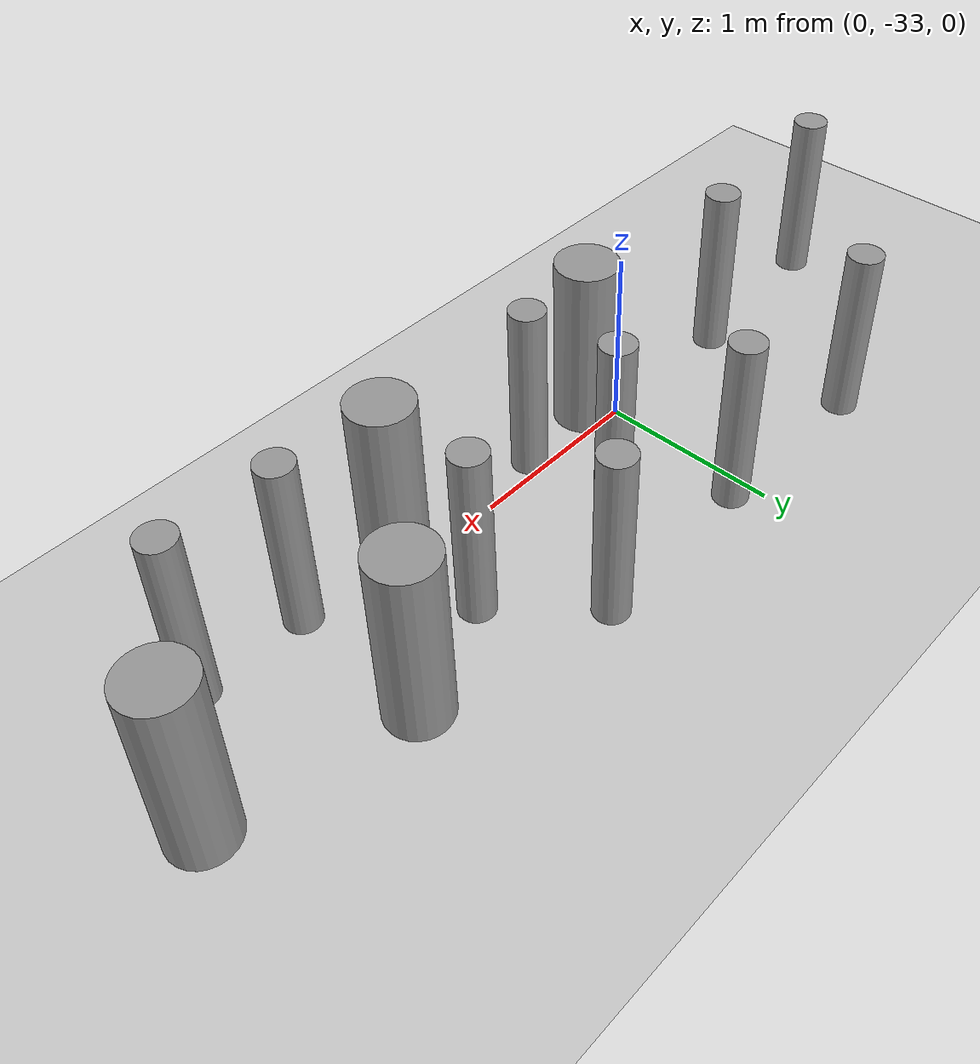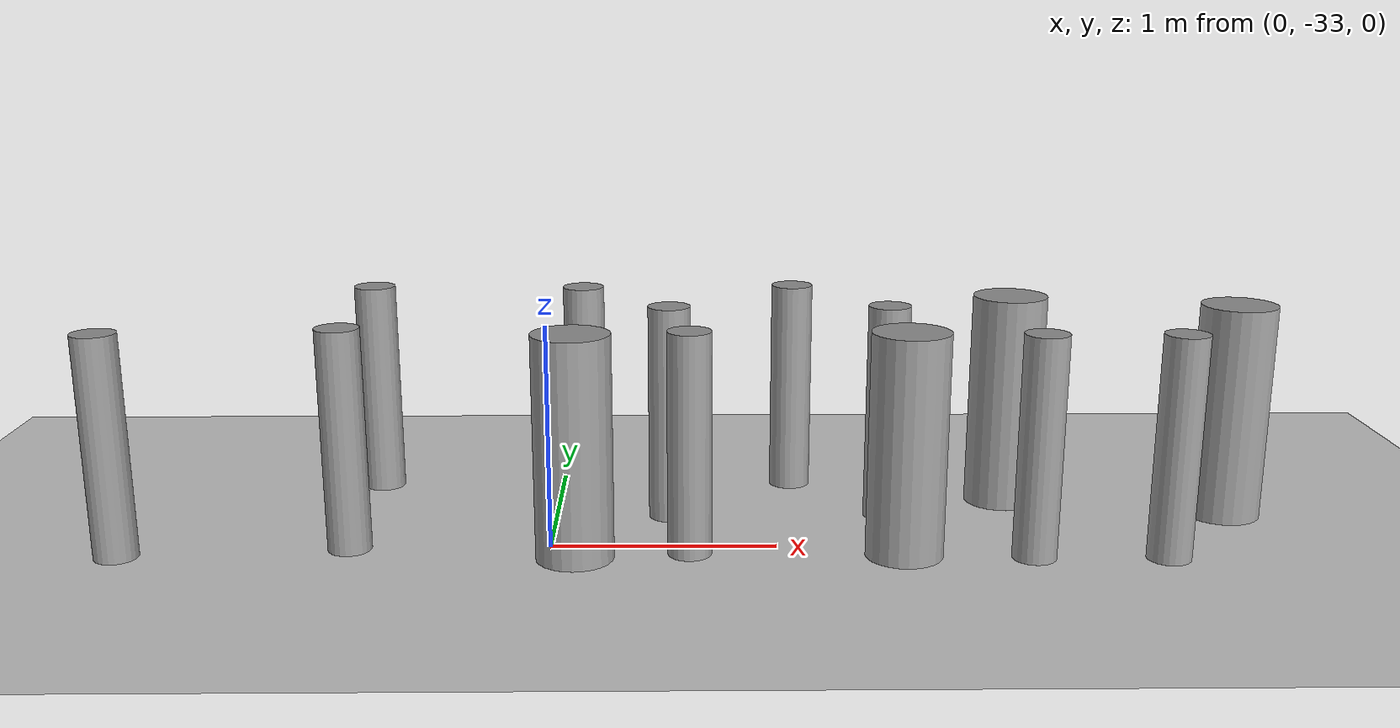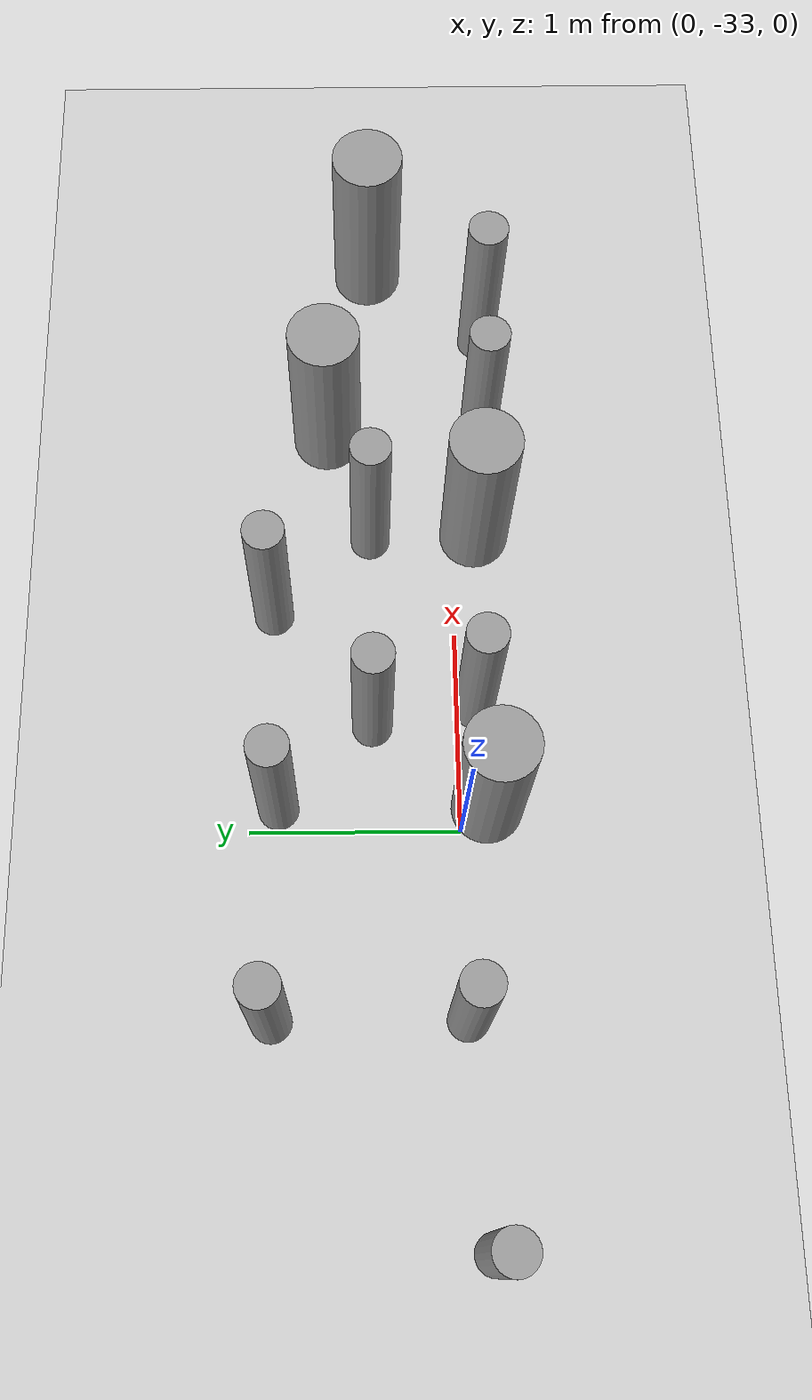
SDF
<sdf version="1.6">
 <world name="default">
  <model name="ground_plane">
   <static>1</static>
   <link name="link">
    <collision name="collision">
     <geometry><plane><normal>0 0 1</normal><size>100 100</size></plane></geometry>
     <surface><friction><ode><mu>100</mu><mu2>50</mu2></ode></friction></surface>
    </collision>
    <visual name="visual">
     <cast_shadows>0</cast_shadows>
     <geometry><plane><normal>0 0 1</normal><size>100 100</size></plane></geometry>
     <material>
      <script><uri>file://media/materials/scripts/gazebo.material</uri><name>Gazebo/Grey</name></script>
     </material>
    </visual>
   </link>
  </model>
  <model name="cyl_wall_clone_clone_3_clone_4">
   <link name="link_0">
    <pose>-2.73893 -0.366465 0 0 -0 0</pose>
    <inertial>
     <mass>0.0374993</mass>
     <inertia>
      <ixx>0.00321281</ixx>
      <ixy>0</ixy>
      <ixz>0</ixz>
      <iyy>0.00321281</iyy>
      <iyz>0</iyz>
      <izz>0.000175774</izz>
     </inertia>
    </inertial>
    <visual name="visual">
     <geometry><cylinder><radius>0.0968661</radius><length>1</length></cylinder></geometry>
     <material>
      <lighting>1</lighting>
      <script><uri>file://media/materials/scripts/gazebo.material</uri><name>Gazebo/Grey</name></script>
      <ambient>0.3 0.3 0.3 1</ambient>
      <diffuse>0.7 0.7 0.7 1</diffuse>
      <specular>0.01 0.01 0.01 1</specular>
      <emissive>0 0 0 1</emissive>
     </material>
    </visual>
    <collision name="collision">
     <geometry><cylinder><radius>0.096866</radius><length>1</length></cylinder></geometry>
     <surface>
      <friction>
       <ode><mu>1</mu><mu2>1</mu2><fdir1>0 0 0</fdir1><slip1>0</slip1><slip2>0</slip2></ode>
       <torsional>
        <coefficient>1</coefficient>
        <patch_radius>0</patch_radius>
        <surface_radius>0</surface_radius>
        <use_patch_radius>1</use_patch_radius>
        <ode><slip>0</slip></ode>
       </torsional>
      </friction>
      <bounce><restitution_coefficient>0</restitution_coefficient><threshold>1e+06</threshold></bounce>
      <contact>
       <collide_without_contact>0</collide_without_contact>
       <collide_without_contact_bitmask>1</collide_without_contact_bitmask>
       <collide_bitmask>1</collide_bitmask>
       <ode>
        <soft_cfm>0</soft_cfm>
        <soft_erp>0.2</soft_erp>
        <kp>1e+13</kp>
        <kd>1</kd>
        <max_vel>0.01</max_vel>
        <min_depth>0</min_depth>
       </ode>
       <bullet>
        <split_impulse>1</split_impulse>
        <split_impulse_penetration_threshold>-0.01</split_impulse_penetration_threshold>
        <soft_cfm>0</soft_cfm>
        <soft_erp>0.2</soft_erp>
        <kp>1e+13</kp>
        <kd>1</kd>
       </bullet>
      </contact>
     </surface>
    </collision>
   </link>
   <link name="link_0_clone">
    <pose>-1.73893 0.61877 0 0 -0 0</pose>
    <inertial>
     <mass>0.0374993</mass>
     <inertia>
      <ixx>0.00321281</ixx>
      <ixy>0</ixy>
      <ixz>0</ixz>
      <iyy>0.00321281</iyy>
      <iyz>0</iyz>
      <izz>0.000175774</izz>
     </inertia>
    </inertial>
    <visual name="visual">
     <geometry><cylinder><radius>0.0968661</radius><length>1</length></cylinder></geometry>
     <material>
      <lighting>1</lighting>
      <script><uri>file://media/materials/scripts/gazebo.material</uri><name>Gazebo/Grey</name></script>
      <ambient>0.3 0.3 0.3 1</ambient>
      <diffuse>0.7 0.7 0.7 1</diffuse>
      <specular>0.01 0.01 0.01 1</specular>
      <emissive>0 0 0 1</emissive>
      <shader type="pixel"/>
     </material>
    </visual>
    <collision name="collision">
     <geometry><cylinder><radius>0.096866</radius><length>1</length></cylinder></geometry>
     <surface>
      <friction>
       <ode><mu>1</mu><mu2>1</mu2><fdir1>0 0 0</fdir1><slip1>0</slip1><slip2>0</slip2></ode>
       <torsional>
        <coefficient>1</coefficient>
        <patch_radius>0</patch_radius>
        <surface_radius>0</surface_radius>
        <use_patch_radius>1</use_patch_radius>
        <ode><slip>0</slip></ode>
       </torsional>
      </friction>
      <bounce><restitution_coefficient>0</restitution_coefficient><threshold>1e+06</threshold></bounce>
      <contact>
       <collide_without_contact>0</collide_without_contact>
       <collide_without_contact_bitmask>1</collide_without_contact_bitmask>
       <collide_bitmask>1</collide_bitmask>
       <ode>
        <soft_cfm>0</soft_cfm>
        <soft_erp>0.2</soft_erp>
        <kp>1e+13</kp>
        <kd>1</kd>
        <max_vel>0.01</max_vel>
        <min_depth>0</min_depth>
       </ode>
       <bullet>
        <split_impulse>1</split_impulse>
        <split_impulse_penetration_threshold>-0.01</split_impulse_penetration_threshold>
        <soft_cfm>0</soft_cfm>
        <soft_erp>0.2</soft_erp>
        <kp>1e+13</kp>
        <kd>1</kd>
       </bullet>
      </contact>
     </surface>
    </collision>
   </link>
   <link name="link_0_clone_clone">
    <pose>-0.327073 0.143919 0 0 -0 0</pose>
    <inertial>
     <mass>0.0374993</mass>
     <inertia>
      <ixx>0.00321281</ixx>
      <ixy>0</ixy>
      <ixz>0</ixz>
      <iyy>0.00321281</iyy>
      <iyz>0</iyz>
      <izz>0.000175774</izz>
     </inertia>
    </inertial>
    <visual name="visual">
     <geometry><cylinder><radius>0.0968661</radius><length>1</length></cylinder></geometry>
     <material>
      <lighting>1</lighting>
      <script><uri>file://media/materials/scripts/gazebo.material</uri><name>Gazebo/Grey</name></script>
      <ambient>0.3 0.3 0.3 1</ambient>
      <diffuse>0.7 0.7 0.7 1</diffuse>
      <specular>0.01 0.01 0.01 1</specular>
      <emissive>0 0 0 1</emissive>
      <shader type="pixel"/>
     </material>
    </visual>
    <collision name="collision">
     <geometry><cylinder><radius>0.096866</radius><length>1</length></cylinder></geometry>
     <surface>
      <friction>
       <ode><mu>1</mu><mu2>1</mu2><fdir1>0 0 0</fdir1><slip1>0</slip1><slip2>0</slip2></ode>
       <torsional>
        <coefficient>1</coefficient>
        <patch_radius>0</patch_radius>
        <surface_radius>0</surface_radius>
        <use_patch_radius>1</use_patch_radius>
        <ode><slip>0</slip></ode>
       </torsional>
      </friction>
      <bounce><restitution_coefficient>0</restitution_coefficient><threshold>1e+06</threshold></bounce>
      <contact>
       <collide_without_contact>0</collide_without_contact>
       <collide_without_contact_bitmask>1</collide_without_contact_bitmask>
       <collide_bitmask>1</collide_bitmask>
       <ode>
        <soft_cfm>0</soft_cfm>
        <soft_erp>0.2</soft_erp>
        <kp>1e+13</kp>
        <kd>1</kd>
        <max_vel>0.01</max_vel>
        <min_depth>0</min_depth>
       </ode>
       <bullet>
        <split_impulse>1</split_impulse>
        <split_impulse_penetration_threshold>-0.01</split_impulse_penetration_threshold>
        <soft_cfm>0</soft_cfm>
        <soft_erp>0.2</soft_erp>
        <kp>1e+13</kp>
        <kd>1</kd>
       </bullet>
      </contact>
     </surface>
    </collision>
   </link>
   <link name="link_0_clone_clone_0">
    <pose>1.26107 -0.419359 0 0 -0 0</pose>
    <inertial>
     <mass>0.0374993</mass>
     <inertia>
      <ixx>0.00321281</ixx>
      <ixy>0</ixy>
      <ixz>0</ixz>
      <iyy>0.00321281</iyy>
      <iyz>0</iyz>
      <izz>0.000175774</izz>
     </inertia>
    </inertial>
    <visual name="visual">
     <geometry><cylinder><radius>0.0968661</radius><length>1</length></cylinder></geometry>
     <material>
      <lighting>1</lighting>
      <script><uri>file://media/materials/scripts/gazebo.material</uri><name>Gazebo/Grey</name></script>
      <ambient>0.3 0.3 0.3 1</ambient>
      <diffuse>0.7 0.7 0.7 1</diffuse>
      <specular>0.01 0.01 0.01 1</specular>
      <emissive>0 0 0 1</emissive>
      <shader type="pixel"/>
     </material>
    </visual>
    <collision name="collision">
     <geometry><cylinder><radius>0.096866</radius><length>1</length></cylinder></geometry>
     <surface>
      <friction>
       <ode><mu>1</mu><mu2>1</mu2><fdir1>0 0 0</fdir1><slip1>0</slip1><slip2>0</slip2></ode>
       <torsional>
        <coefficient>1</coefficient>
        <patch_radius>0</patch_radius>
        <surface_radius>0</surface_radius>
        <use_patch_radius>1</use_patch_radius>
        <ode><slip>0</slip></ode>
       </torsional>
      </friction>
      <bounce><restitution_coefficient>0</restitution_coefficient><threshold>1e+06</threshold></bounce>
      <contact>
       <collide_without_contact>0</collide_without_contact>
       <collide_without_contact_bitmask>1</collide_without_contact_bitmask>
       <collide_bitmask>1</collide_bitmask>
       <ode>
        <soft_cfm>0</soft_cfm>
        <soft_erp>0.2</soft_erp>
        <kp>1e+13</kp>
        <kd>1</kd>
        <max_vel>0.01</max_vel>
        <min_depth>0</min_depth>
       </ode>
       <bullet>
        <split_impulse>1</split_impulse>
        <split_impulse_penetration_threshold>-0.01</split_impulse_penetration_threshold>
        <soft_cfm>0</soft_cfm>
        <soft_erp>0.2</soft_erp>
        <kp>1e+13</kp>
        <kd>1</kd>
       </bullet>
      </contact>
     </surface>
    </collision>
   </link>
   <link name="link_0_clone_clone_1">
    <pose>-1.73893 -0.277168 0 0 -0 0</pose>
    <inertial>
     <mass>0.0374993</mass>
     <inertia>
      <ixx>0.00321281</ixx>
      <ixy>0</ixy>
      <ixz>0</ixz>
      <iyy>0.00321281</iyy>
      <iyz>0</iyz>
      <izz>0.000175774</izz>
     </inertia>
    </inertial>
    <visual name="visual">
     <geometry><cylinder><radius>0.0968661</radius><length>1</length></cylinder></geometry>
     <material>
      <lighting>1</lighting>
      <script><uri>file://media/materials/scripts/gazebo.material</uri><name>Gazebo/Grey</name></script>
      <ambient>0.3 0.3 0.3 1</ambient>
      <diffuse>0.7 0.7 0.7 1</diffuse>
      <specular>0.01 0.01 0.01 1</specular>
      <emissive>0 0 0 1</emissive>
      <shader type="pixel"/>
     </material>
    </visual>
    <collision name="collision">
     <geometry><cylinder><radius>0.096866</radius><length>1</length></cylinder></geometry>
     <surface>
      <friction>
       <ode><mu>1</mu><mu2>1</mu2><fdir1>0 0 0</fdir1><slip1>0</slip1><slip2>0</slip2></ode>
       <torsional>
        <coefficient>1</coefficient>
        <patch_radius>0</patch_radius>
        <surface_radius>0</surface_radius>
        <use_patch_radius>1</use_patch_radius>
        <ode><slip>0</slip></ode>
       </torsional>
      </friction>
      <bounce><restitution_coefficient>0</restitution_coefficient><threshold>1e+06</threshold></bounce>
      <contact>
       <collide_without_contact>0</collide_without_contact>
       <collide_without_contact_bitmask>1</collide_without_contact_bitmask>
       <collide_bitmask>1</collide_bitmask>
       <ode>
        <soft_cfm>0</soft_cfm>
        <soft_erp>0.2</soft_erp>
        <kp>1e+13</kp>
        <kd>1</kd>
        <max_vel>0.01</max_vel>
        <min_depth>0</min_depth>
       </ode>
       <bullet>
        <split_impulse>1</split_impulse>
        <split_impulse_penetration_threshold>-0.01</split_impulse_penetration_threshold>
        <soft_cfm>0</soft_cfm>
        <soft_erp>0.2</soft_erp>
        <kp>1e+13</kp>
        <kd>1</kd>
       </bullet>
      </contact>
     </surface>
    </collision>
   </link>
   <link name="link_0_clone_clone_2">
    <pose>-0.738934 0.593961 0 0 -0 0</pose>
    <inertial>
     <mass>0.0374993</mass>
     <inertia>
      <ixx>0.00321281</ixx>
      <ixy>0</ixy>
      <ixz>0</ixz>
      <iyy>0.00321281</iyy>
      <iyz>0</iyz>
      <izz>0.000175774</izz>
     </inertia>
    </inertial>
    <visual name="visual">
     <geometry><cylinder><radius>0.0968661</radius><length>1</length></cylinder></geometry>
     <material>
      <lighting>1</lighting>
      <script><uri>file://media/materials/scripts/gazebo.material</uri><name>Gazebo/Grey</name></script>
      <ambient>0.3 0.3 0.3 1</ambient>
      <diffuse>0.7 0.7 0.7 1</diffuse>
      <specular>0.01 0.01 0.01 1</specular>
      <emissive>0 0 0 1</emissive>
      <shader type="pixel"/>
     </material>
    </visual>
    <collision name="collision">
     <geometry><cylinder><radius>0.096866</radius><length>1</length></cylinder></geometry>
     <surface>
      <friction>
       <ode><mu>1</mu><mu2>1</mu2><fdir1>0 0 0</fdir1><slip1>0</slip1><slip2>0</slip2></ode>
       <torsional>
        <coefficient>1</coefficient>
        <patch_radius>0</patch_radius>
        <surface_radius>0</surface_radius>
        <use_patch_radius>1</use_patch_radius>
        <ode><slip>0</slip></ode>
       </torsional>
      </friction>
      <bounce><restitution_coefficient>0</restitution_coefficient><threshold>1e+06</threshold></bounce>
      <contact>
       <collide_without_contact>0</collide_without_contact>
       <collide_without_contact_bitmask>1</collide_without_contact_bitmask>
       <collide_bitmask>1</collide_bitmask>
       <ode>
        <soft_cfm>0</soft_cfm>
        <soft_erp>0.2</soft_erp>
        <kp>1e+13</kp>
        <kd>1</kd>
        <max_vel>0.01</max_vel>
        <min_depth>0</min_depth>
       </ode>
       <bullet>
        <split_impulse>1</split_impulse>
        <split_impulse_penetration_threshold>-0.01</split_impulse_penetration_threshold>
        <soft_cfm>0</soft_cfm>
        <soft_erp>0.2</soft_erp>
        <kp>1e+13</kp>
        <kd>1</kd>
       </bullet>
      </contact>
     </surface>
    </collision>
   </link>
   <link name="link_0_clone_clone_3">
    <pose>0.261066 0.624849 0 0 -0 0</pose>
    <inertial>
     <mass>0.0374993</mass>
     <inertia>
      <ixx>0.00321281</ixx>
      <ixy>0</ixy>
      <ixz>0</ixz>
      <iyy>0.00321281</iyy>
      <iyz>0</iyz>
      <izz>0.000175774</izz>
     </inertia>
    </inertial>
    <visual name="visual">
     <geometry><cylinder><radius>0.0968661</radius><length>1</length></cylinder></geometry>
     <material>
      <lighting>1</lighting>
      <script><uri>file://media/materials/scripts/gazebo.material</uri><name>Gazebo/Grey</name></script>
      <ambient>0.3 0.3 0.3 1</ambient>
      <diffuse>0.7 0.7 0.7 1</diffuse>
      <specular>0.01 0.01 0.01 1</specular>
      <emissive>0 0 0 1</emissive>
      <shader type="pixel"/>
     </material>
    </visual>
    <collision name="collision">
     <geometry><cylinder><radius>0.096866</radius><length>1</length></cylinder></geometry>
     <surface>
      <friction>
       <ode><mu>1</mu><mu2>1</mu2><fdir1>0 0 0</fdir1><slip1>0</slip1><slip2>0</slip2></ode>
       <torsional>
        <coefficient>1</coefficient>
        <patch_radius>0</patch_radius>
        <surface_radius>0</surface_radius>
        <use_patch_radius>1</use_patch_radius>
        <ode><slip>0</slip></ode>
       </torsional>
      </friction>
      <bounce><restitution_coefficient>0</restitution_coefficient><threshold>1e+06</threshold></bounce>
      <contact>
       <collide_without_contact>0</collide_without_contact>
       <collide_without_contact_bitmask>1</collide_without_contact_bitmask>
       <collide_bitmask>1</collide_bitmask>
       <ode>
        <soft_cfm>0</soft_cfm>
        <soft_erp>0.2</soft_erp>
        <kp>1e+13</kp>
        <kd>1</kd>
        <max_vel>0.01</max_vel>
        <min_depth>0</min_depth>
       </ode>
       <bullet>
        <split_impulse>1</split_impulse>
        <split_impulse_penetration_threshold>-0.01</split_impulse_penetration_threshold>
        <soft_cfm>0</soft_cfm>
        <soft_erp>0.2</soft_erp>
        <kp>1e+13</kp>
        <kd>1</kd>
       </bullet>
      </contact>
     </surface>
    </collision>
   </link>
   <link name="link_0_clone_clone_4">
    <pose>-0.239049 -0.353105 0 0 -0 0</pose>
    <inertial>
     <mass>0.0374993</mass>
     <inertia>
      <ixx>0.00321281</ixx>
      <ixy>0</ixy>
      <ixz>0</ixz>
      <iyy>0.00321281</iyy>
      <iyz>0</iyz>
      <izz>0.000175774</izz>
     </inertia>
    </inertial>
    <visual name="visual">
     <geometry><cylinder><radius>0.0968661</radius><length>1</length></cylinder></geometry>
     <material>
      <lighting>1</lighting>
      <script><uri>file://media/materials/scripts/gazebo.material</uri><name>Gazebo/Grey</name></script>
      <ambient>0.3 0.3 0.3 1</ambient>
      <diffuse>0.7 0.7 0.7 1</diffuse>
      <specular>0.01 0.01 0.01 1</specular>
      <emissive>0 0 0 1</emissive>
      <shader type="pixel"/>
     </material>
    </visual>
    <collision name="collision">
     <geometry><cylinder><radius>0.096866</radius><length>1</length></cylinder></geometry>
     <surface>
      <friction>
       <ode><mu>1</mu><mu2>1</mu2><fdir1>0 0 0</fdir1><slip1>0</slip1><slip2>0</slip2></ode>
       <torsional>
        <coefficient>1</coefficient>
        <patch_radius>0</patch_radius>
        <surface_radius>0</surface_radius>
        <use_patch_radius>1</use_patch_radius>
        <ode><slip>0</slip></ode>
       </torsional>
      </friction>
      <bounce><restitution_coefficient>0</restitution_coefficient><threshold>1e+06</threshold></bounce>
      <contact>
       <collide_without_contact>0</collide_without_contact>
       <collide_without_contact_bitmask>1</collide_without_contact_bitmask>
       <collide_bitmask>1</collide_bitmask>
       <ode>
        <soft_cfm>0</soft_cfm>
        <soft_erp>0.2</soft_erp>
        <kp>1e+13</kp>
        <kd>1</kd>
        <max_vel>0.01</max_vel>
        <min_depth>0</min_depth>
       </ode>
       <bullet>
        <split_impulse>1</split_impulse>
        <split_impulse_penetration_threshold>-0.01</split_impulse_penetration_threshold>
        <soft_cfm>0</soft_cfm>
        <soft_erp>0.2</soft_erp>
        <kp>1e+13</kp>
        <kd>1</kd>
       </bullet>
      </contact>
     </surface>
    </collision>
   </link>
   <link name="link_0_clone_clone_5">
    <pose>0.672792 0.143919 0 0 -0 0</pose>
    <inertial>
     <mass>0.0374993</mass>
     <inertia>
      <ixx>0.00321281</ixx>
      <ixy>0</ixy>
      <ixz>0</ixz>
      <iyy>0.00321281</iyy>
      <iyz>0</iyz>
      <izz>0.000175774</izz>
     </inertia>
    </inertial>
    <visual name="visual">
     <geometry><cylinder><radius>0.0968661</radius><length>1</length></cylinder></geometry>
     <material>
      <lighting>1</lighting>
      <script><uri>file://media/materials/scripts/gazebo.material</uri><name>Gazebo/Grey</name></script>
      <ambient>0.3 0.3 0.3 1</ambient>
      <diffuse>0.7 0.7 0.7 1</diffuse>
      <specular>0.01 0.01 0.01 1</specular>
      <emissive>0 0 0 1</emissive>
      <shader type="pixel"/>
     </material>
    </visual>
    <collision name="collision">
     <geometry><cylinder><radius>0.096866</radius><length>1</length></cylinder></geometry>
     <surface>
      <friction>
       <ode><mu>1</mu><mu2>1</mu2><fdir1>0 0 0</fdir1><slip1>0</slip1><slip2>0</slip2></ode>
       <torsional>
        <coefficient>1</coefficient>
        <patch_radius>0</patch_radius>
        <surface_radius>0</surface_radius>
        <use_patch_radius>1</use_patch_radius>
        <ode><slip>0</slip></ode>
       </torsional>
      </friction>
      <bounce><restitution_coefficient>0</restitution_coefficient><threshold>1e+06</threshold></bounce>
      <contact>
       <collide_without_contact>0</collide_without_contact>
       <collide_without_contact_bitmask>1</collide_without_contact_bitmask>
       <collide_bitmask>1</collide_bitmask>
       <ode>
        <soft_cfm>0</soft_cfm>
        <soft_erp>0.2</soft_erp>
        <kp>1e+13</kp>
        <kd>1</kd>
        <max_vel>0.01</max_vel>
        <min_depth>0</min_depth>
       </ode>
       <bullet>
        <split_impulse>1</split_impulse>
        <split_impulse_penetration_threshold>-0.01</split_impulse_penetration_threshold>
        <soft_cfm>0</soft_cfm>
        <soft_erp>0.2</soft_erp>
        <kp>1e+13</kp>
        <kd>1</kd>
       </bullet>
      </contact>
     </surface>
    </collision>
   </link>
   <link name="link_0_clone_clone_6">
    <pose>1.84596 -0.433423 0 0 -0 0</pose>
    <inertial>
     <mass>0.0374993</mass>
     <inertia>
      <ixx>0.00321281</ixx>
      <ixy>0</ixy>
      <ixz>0</ixz>
      <iyy>0.00321281</iyy>
      <iyz>0</iyz>
      <izz>0.000175774</izz>
     </inertia>
    </inertial>
    <visual name="visual">
     <geometry><cylinder><radius>0.0968661</radius><length>1</length></cylinder></geometry>
     <material>
      <lighting>1</lighting>
      <script><uri>file://media/materials/scripts/gazebo.material</uri><name>Gazebo/Grey</name></script>
      <ambient>0.3 0.3 0.3 1</ambient>
      <diffuse>0.7 0.7 0.7 1</diffuse>
      <specular>0.01 0.01 0.01 1</specular>
      <emissive>0 0 0 1</emissive>
      <shader type="pixel"/>
     </material>
    </visual>
    <collision name="collision">
     <geometry><cylinder><radius>0.096866</radius><length>1</length></cylinder></geometry>
     <surface>
      <friction>
       <ode><mu>1</mu><mu2>1</mu2><fdir1>0 0 0</fdir1><slip1>0</slip1><slip2>0</slip2></ode>
       <torsional>
        <coefficient>1</coefficient>
        <patch_radius>0</patch_radius>
        <surface_radius>0</surface_radius>
        <use_patch_radius>1</use_patch_radius>
        <ode><slip>0</slip></ode>
       </torsional>
      </friction>
      <bounce><restitution_coefficient>0</restitution_coefficient><threshold>1e+06</threshold></bounce>
      <contact>
       <collide_without_contact>0</collide_without_contact>
       <collide_without_contact_bitmask>1</collide_without_contact_bitmask>
       <collide_bitmask>1</collide_bitmask>
       <ode>
        <soft_cfm>0</soft_cfm>
        <soft_erp>0.2</soft_erp>
        <kp>1e+13</kp>
        <kd>1</kd>
        <max_vel>0.01</max_vel>
        <min_depth>0</min_depth>
       </ode>
       <bullet>
        <split_impulse>1</split_impulse>
        <split_impulse_penetration_threshold>-0.01</split_impulse_penetration_threshold>
        <soft_cfm>0</soft_cfm>
        <soft_erp>0.2</soft_erp>
        <kp>1e+13</kp>
        <kd>1</kd>
       </bullet>
      </contact>
     </surface>
    </collision>
   </link>
   <link name="link_1">
    <pose>-0.738934 -0.397931 0 0 -0 0</pose>
    <inertial>
     <mass>0.117398</mass>
     <inertia>
      <ixx>0.0106445</ixx>
      <ixy>0</ixy>
      <ixz>0</ixz>
      <iyy>0.0106445</iyy>
      <iyz>0</iyz>
      <izz>0.00172278</izz>
     </inertia>
    </inertial>
    <visual name="visual">
     <geometry><cylinder><radius>0.171317</radius><length>1</length></cylinder></geometry>
     <material>
      <lighting>1</lighting>
      <script><uri>file://media/materials/scripts/gazebo.material</uri><name>Gazebo/Grey</name></script>
      <ambient>0.3 0.3 0.3 1</ambient>
      <diffuse>0.7 0.7 0.7 1</diffuse>
      <specular>0.01 0.01 0.01 1</specular>
      <emissive>0 0 0 1</emissive>
     </material>
    </visual>
    <collision name="collision">
     <geometry><cylinder><radius>0.171317</radius><length>1</length></cylinder></geometry>
     <surface>
      <friction>
       <ode><mu>1</mu><mu2>1</mu2><fdir1>0 0 0</fdir1><slip1>0</slip1><slip2>0</slip2></ode>
       <torsional>
        <coefficient>1</coefficient>
        <patch_radius>0</patch_radius>
        <surface_radius>0</surface_radius>
        <use_patch_radius>1</use_patch_radius>
        <ode><slip>0</slip></ode>
       </torsional>
      </friction>
      <bounce><restitution_coefficient>0</restitution_coefficient><threshold>1e+06</threshold></bounce>
      <contact>
       <collide_without_contact>0</collide_without_contact>
       <collide_without_contact_bitmask>1</collide_without_contact_bitmask>
       <collide_bitmask>1</collide_bitmask>
       <ode>
        <soft_cfm>0</soft_cfm>
        <soft_erp>0.2</soft_erp>
        <kp>1e+13</kp>
        <kd>1</kd>
        <max_vel>0.01</max_vel>
        <min_depth>0</min_depth>
       </ode>
       <bullet>
        <split_impulse>1</split_impulse>
        <split_impulse_penetration_threshold>-0.01</split_impulse_penetration_threshold>
        <soft_cfm>0</soft_cfm>
        <soft_erp>0.2</soft_erp>
        <kp>1e+13</kp>
        <kd>1</kd>
       </bullet>
      </contact>
     </surface>
    </collision>
   </link>
   <link name="link_1_clone">
    <pose>0.697784 -0.380861 0 0 -0 0</pose>
    <inertial>
     <mass>0.117398</mass>
     <inertia>
      <ixx>0.0106445</ixx>
      <ixy>0</ixy>
      <ixz>0</ixz>
      <iyy>0.0106445</iyy>
      <iyz>0</iyz>
      <izz>0.00172278</izz>
     </inertia>
    </inertial>
    <visual name="visual">
     <geometry><cylinder><radius>0.171317</radius><length>1</length></cylinder></geometry>
     <material>
      <lighting>1</lighting>
      <script><uri>file://media/materials/scripts/gazebo.material</uri><name>Gazebo/Grey</name></script>
      <ambient>0.3 0.3 0.3 1</ambient>
      <diffuse>0.7 0.7 0.7 1</diffuse>
      <specular>0.01 0.01 0.01 1</specular>
      <emissive>0 0 0 1</emissive>
      <shader type="pixel"/>
     </material>
    </visual>
    <collision name="collision">
     <geometry><cylinder><radius>0.171317</radius><length>1</length></cylinder></geometry>
     <surface>
      <friction>
       <ode><mu>1</mu><mu2>1</mu2><fdir1>0 0 0</fdir1><slip1>0</slip1><slip2>0</slip2></ode>
       <torsional>
        <coefficient>1</coefficient>
        <patch_radius>0</patch_radius>
        <surface_radius>0</surface_radius>
        <use_patch_radius>1</use_patch_radius>
        <ode><slip>0</slip></ode>
       </torsional>
      </friction>
      <bounce><restitution_coefficient>0</restitution_coefficient><threshold>1e+06</threshold></bounce>
      <contact>
       <collide_without_contact>0</collide_without_contact>
       <collide_without_contact_bitmask>1</collide_without_contact_bitmask>
       <collide_bitmask>1</collide_bitmask>
       <ode>
        <soft_cfm>0</soft_cfm>
        <soft_erp>0.2</soft_erp>
        <kp>1e+13</kp>
        <kd>1</kd>
        <max_vel>0.01</max_vel>
        <min_depth>0</min_depth>
       </ode>
       <bullet>
        <split_impulse>1</split_impulse>
        <split_impulse_penetration_threshold>-0.01</split_impulse_penetration_threshold>
        <soft_cfm>0</soft_cfm>
        <soft_erp>0.2</soft_erp>
        <kp>1e+13</kp>
        <kd>1</kd>
       </bullet>
      </contact>
     </surface>
    </collision>
   </link>
   <link name="link_1_clone_0">
    <pose>1.26107 0.358974 0 0 -0 0</pose>
    <inertial>
     <mass>0.117398</mass>
     <inertia>
      <ixx>0.0106445</ixx>
      <ixy>0</ixy>
      <ixz>0</ixz>
      <iyy>0.0106445</iyy>
      <iyz>0</iyz>
      <izz>0.00172278</izz>
     </inertia>
    </inertial>
    <visual name="visual">
     <geometry><cylinder><radius>0.171317</radius><length>1</length></cylinder></geometry>
     <material>
      <lighting>1</lighting>
      <script><uri>file://media/materials/scripts/gazebo.material</uri><name>Gazebo/Grey</name></script>
      <ambient>0.3 0.3 0.3 1</ambient>
      <diffuse>0.7 0.7 0.7 1</diffuse>
      <specular>0.01 0.01 0.01 1</specular>
      <emissive>0 0 0 1</emissive>
      <shader type="pixel"/>
     </material>
    </visual>
    <collision name="collision">
     <geometry><cylinder><radius>0.171317</radius><length>1</length></cylinder></geometry>
     <surface>
      <friction>
       <ode><mu>1</mu><mu2>1</mu2><fdir1>0 0 0</fdir1><slip1>0</slip1><slip2>0</slip2></ode>
       <torsional>
        <coefficient>1</coefficient>
        <patch_radius>0</patch_radius>
        <surface_radius>0</surface_radius>
        <use_patch_radius>1</use_patch_radius>
        <ode><slip>0</slip></ode>
       </torsional>
      </friction>
      <bounce><restitution_coefficient>0</restitution_coefficient><threshold>1e+06</threshold></bounce>
      <contact>
       <collide_without_contact>0</collide_without_contact>
       <collide_without_contact_bitmask>1</collide_without_contact_bitmask>
       <collide_bitmask>1</collide_bitmask>
       <ode>
        <soft_cfm>0</soft_cfm>
        <soft_erp>0.2</soft_erp>
        <kp>1e+13</kp>
        <kd>1</kd>
        <max_vel>0.01</max_vel>
        <min_depth>0</min_depth>
       </ode>
       <bullet>
        <split_impulse>1</split_impulse>
        <split_impulse_penetration_threshold>-0.01</split_impulse_penetration_threshold>
        <soft_cfm>0</soft_cfm>
        <soft_erp>0.2</soft_erp>
        <kp>1e+13</kp>
        <kd>1</kd>
       </bullet>
      </contact>
     </surface>
    </collision>
   </link>
   <link name="link_1_clone_1">
    <pose>2.26107 0.143919 0 0 -0 0</pose>
    <inertial>
     <mass>0.117398</mass>
     <inertia>
      <ixx>0.0106445</ixx>
      <ixy>0</ixy>
      <ixz>0</ixz>
      <iyy>0.0106445</iyy>
      <iyz>0</iyz>
      <izz>0.00172278</izz>
     </inertia>
    </inertial>
    <visual name="visual">
     <geometry><cylinder><radius>0.171317</radius><length>1</length></cylinder></geometry>
     <material>
      <lighting>1</lighting>
      <script><uri>file://media/materials/scripts/gazebo.material</uri><name>Gazebo/Grey</name></script>
      <ambient>0.3 0.3 0.3 1</ambient>
      <diffuse>0.7 0.7 0.7 1</diffuse>
      <specular>0.01 0.01 0.01 1</specular>
      <emissive>0 0 0 1</emissive>
      <shader type="pixel"/>
     </material>
    </visual>
    <collision name="collision">
     <geometry><cylinder><radius>0.171317</radius><length>1</length></cylinder></geometry>
     <surface>
      <friction>
       <ode><mu>1</mu><mu2>1</mu2><fdir1>0 0 0</fdir1><slip1>0</slip1><slip2>0</slip2></ode>
       <torsional>
        <coefficient>1</coefficient>
        <patch_radius>0</patch_radius>
        <surface_radius>0</surface_radius>
        <use_patch_radius>1</use_patch_radius>
        <ode><slip>0</slip></ode>
       </torsional>
      </friction>
      <bounce><restitution_coefficient>0</restitution_coefficient><threshold>1e+06</threshold></bounce>
      <contact>
       <collide_without_contact>0</collide_without_contact>
       <collide_without_contact_bitmask>1</collide_without_contact_bitmask>
       <collide_bitmask>1</collide_bitmask>
       <ode>
        <soft_cfm>0</soft_cfm>
        <soft_erp>0.2</soft_erp>
        <kp>1e+13</kp>
        <kd>1</kd>
        <max_vel>0.01</max_vel>
        <min_depth>0</min_depth>
       </ode>
       <bullet>
        <split_impulse>1</split_impulse>
        <split_impulse_penetration_threshold>-0.01</split_impulse_penetration_threshold>
        <soft_cfm>0</soft_cfm>
        <soft_erp>0.2</soft_erp>
        <kp>1e+13</kp>
        <kd>1</kd>
       </bullet>
      </contact>
     </surface>
    </collision>
   </link>
   <static>1</static>
   <pose>0.852174 -32.7317 0.5 0 -0 0</pose>
  </model>
 </world>
</sdf>
